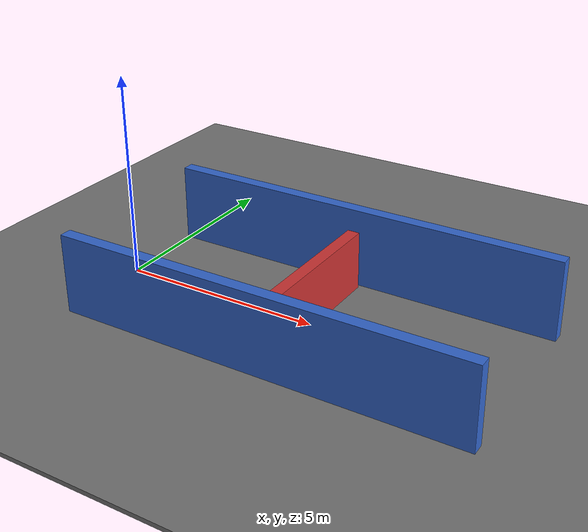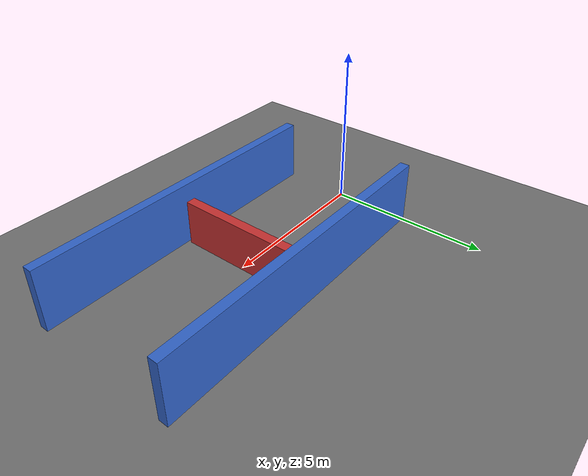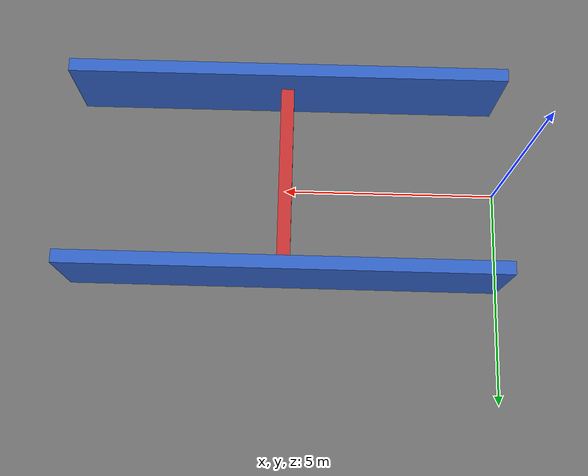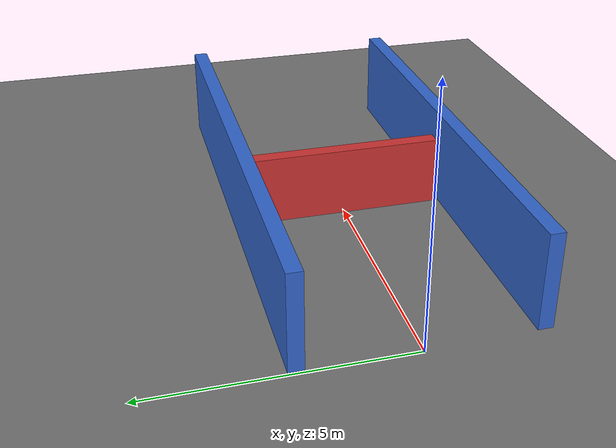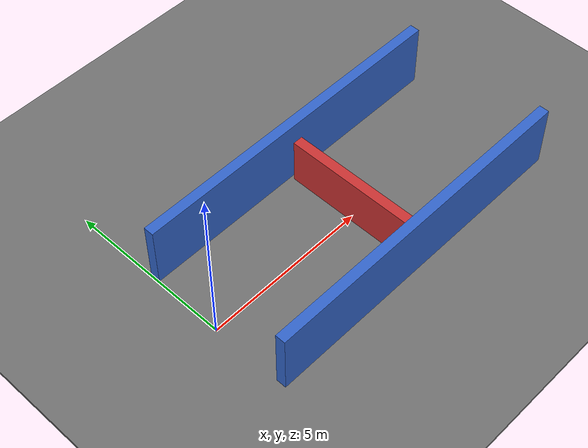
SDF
<?xml version="1.0" ?>
<sdf version="1.9">
  <world name="aris_lidar_smoke">
    <physics name="1ms" type="ignored">
      <max_step_size>0.001</max_step_size>
      <real_time_factor>1.0</real_time_factor>
    </physics>
    <plugin filename="gz-sim-physics-system" name="gz::sim::systems::Physics"/>
    <plugin filename="gz-sim-sensors-system" name="gz::sim::systems::Sensors">
      <render_engine>ogre2</render_engine>
    </plugin>
    <plugin filename="gz-sim-scene-broadcaster-system" name="gz::sim::systems::SceneBroadcaster"/>
    <plugin filename="gz-sim-user-commands-system" name="gz::sim::systems::UserCommands"/>

    <light type="directional" name="sun">
      <pose>0 0 10 0 0 0</pose>
      <diffuse>0.8 0.8 0.8 1</diffuse>
      <specular>0.2 0.2 0.2 1</specular>
      <direction>-0.5 0.1 -0.9</direction>
    </light>

    <model name="ground_plane">
      <static>true</static>
      <link name="link">
        <collision name="collision">
          <geometry><box><size>30 30 0.1</size></box></geometry>
        </collision>
        <visual name="visual">
          <geometry><box><size>30 30 0.1</size></box></geometry>
          <material>
            <ambient>0.45 0.45 0.45 1</ambient>
            <diffuse>0.45 0.45 0.45 1</diffuse>
          </material>
        </visual>
      </link>
    </model>

    <model name="scan_target_front">
      <static>true</static>
      <pose>5 0 0.75 0 0 0</pose>
      <link name="link">
        <collision name="collision">
          <geometry><box><size>0.3 4.0 1.5</size></box></geometry>
        </collision>
        <visual name="visual">
          <geometry><box><size>0.3 4.0 1.5</size></box></geometry>
          <material>
            <ambient>0.8 0.2 0.2 1</ambient>
            <diffuse>0.8 0.2 0.2 1</diffuse>
          </material>
        </visual>
      </link>
    </model>

    <model name="scan_target_left_wall">
      <static>true</static>
      <pose>5 2.25 1.0 0 0 0</pose>
      <link name="link">
        <collision name="collision">
          <geometry><box><size>10.0 0.3 2.0</size></box></geometry>
        </collision>
        <visual name="visual">
          <geometry><box><size>10.0 0.3 2.0</size></box></geometry>
          <material>
            <ambient>0.2 0.4 0.8 1</ambient>
            <diffuse>0.2 0.4 0.8 1</diffuse>
          </material>
        </visual>
      </link>
    </model>

    <model name="scan_target_right_wall">
      <static>true</static>
      <pose>5 -2.25 1.0 0 0 0</pose>
      <link name="link">
        <collision name="collision">
          <geometry><box><size>10.0 0.3 2.0</size></box></geometry>
        </collision>
        <visual name="visual">
          <geometry><box><size>10.0 0.3 2.0</size></box></geometry>
          <material>
            <ambient>0.2 0.4 0.8 1</ambient>
            <diffuse>0.2 0.4 0.8 1</diffuse>
          </material>
        </visual>
      </link>
    </model>
  </world>
</sdf>
